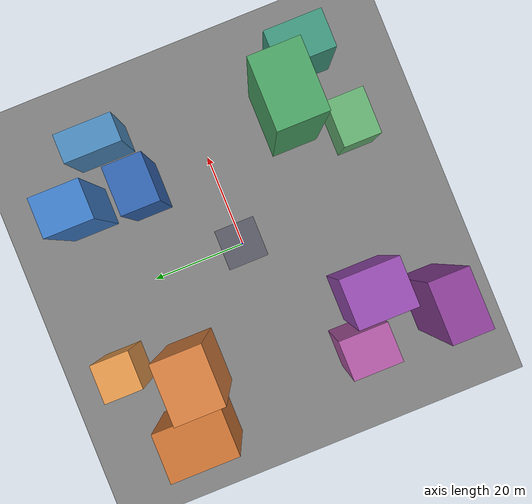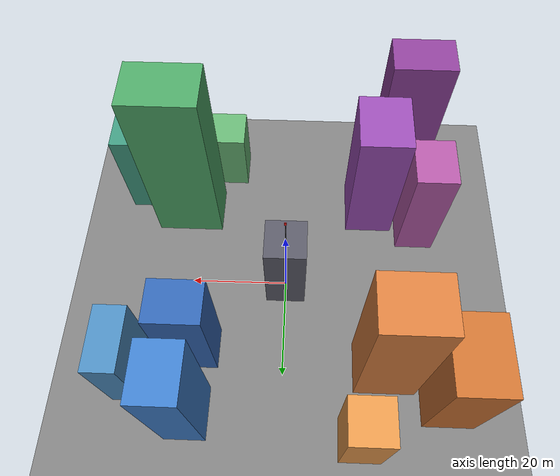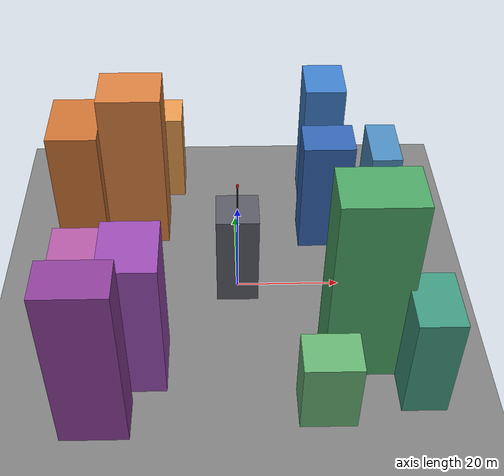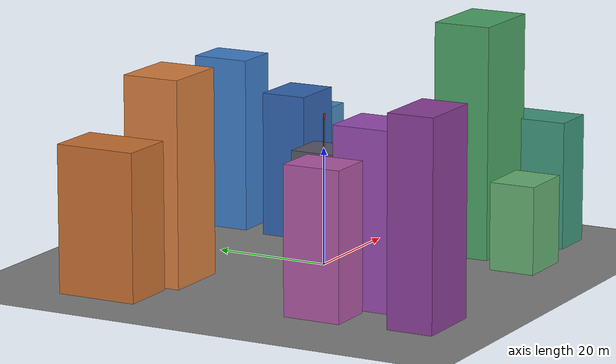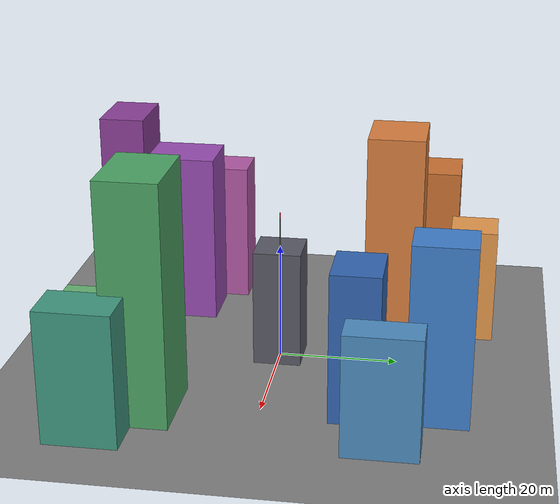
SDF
<?xml version="1.0" ?>
<!-- Scenario 2: Dense Urban Environment
     Many tall buildings creating heavy NLOS conditions
     Expected: Ray tracing and hybrid models should outperform simple FSPL -->
<sdf version="1.8">
  <world name="scenario_dense_urban">

    <physics name="1ms" type="ignored">
      <max_step_size>0.001</max_step_size>
      <real_time_factor>1.0</real_time_factor>
    </physics>

    <plugin filename="ignition-gazebo-physics-system"
            name="ignition::gazebo::systems::Physics"/>
    <plugin filename="ignition-gazebo-scene-broadcaster-system"
            name="ignition::gazebo::systems::SceneBroadcaster"/>
    <plugin filename="ignition-gazebo-user-commands-system"
            name="ignition::gazebo::systems::UserCommands"/>

    <plugin filename="libHeatmapPlugin.so"
            name="heatmap_plugin::HeatmapPlugin">
      <grid_w>128</grid_w>
      <grid_h>128</grid_h>
      <cell_size>0.5</cell_size>
      <frequency_hz>3500000000</frequency_hz>
      <tx_dbm>30.0</tx_dbm>
      <tx_height>25.0</tx_height>
      <rx_height>1.5</rx_height>
      <tx_gain_dbi>8.0</tx_gain_dbi>
      <rx_gain_dbi>0.0</rx_gain_dbi>
      <gnb_pose>0 0 25 0 0 0</gnb_pose>
      <propagation_model>3gpp_umi</propagation_model>
      <wall_loss_db>20.0</wall_loss_db>
      <reflection_coeff>0.6</reflection_coeff>
      <include_shadowing>false</include_shadowing>
      <max_reflections>2</max_reflections>
    </plugin>

    <light type="directional" name="sun">
      <cast_shadows>true</cast_shadows>
      <pose>0 0 50 0 0 0</pose>
      <diffuse>0.8 0.8 0.8 1</diffuse>
      <specular>0.2 0.2 0.2 1</specular>
      <direction>-0.5 0.1 -0.9</direction>
    </light>

    <!-- Ground plane - Grey -->
    <model name="ground_plane">
      <static>true</static>
      <link name="link">
        <collision name="collision">
          <geometry><plane><normal>0 0 1</normal><size>200 200</size></plane></geometry>
        </collision>
        <visual name="visual">
          <geometry><plane><normal>0 0 1</normal><size>200 200</size></plane></geometry>
          <material>
            <ambient>0.5 0.5 0.5 1</ambient>
            <diffuse>0.5 0.5 0.5 1</diffuse>
            <specular>0.1 0.1 0.1 1</specular>
            <emissive>0 0 0 1</emissive>
          </material>
        </visual>
      </link>
    </model>

    <!-- gNB on rooftop - Dark grey -->
    <model name="gnb_building">
      <static>true</static>
      <pose>0 0 10 0 0 0</pose>
      <link name="link">
        <collision name="collision">
          <geometry><box><size>8 8 20</size></box></geometry>
        </collision>
        <visual name="visual">
          <geometry><box><size>8 8 20</size></box></geometry>
          <material>
            <ambient>0.35 0.35 0.4 1</ambient>
            <diffuse>0.35 0.35 0.4 1</diffuse>
            <specular>0.1 0.1 0.1 1</specular>
            <emissive>0 0 0 1</emissive>
          </material>
        </visual>
      </link>
    </model>

    <model name="gnb_antenna">
      <static>true</static>
      <pose>0 0 21 0 0 0</pose>
      <link name="link">
        <visual name="pole">
          <geometry><cylinder><radius>0.1</radius><length>8</length></cylinder></geometry>
          <material>
            <ambient>0.3 0.3 0.3 1</ambient>
            <diffuse>0.3 0.3 0.3 1</diffuse>
            <specular>0.1 0.1 0.1 1</specular>
            <emissive>0 0 0 1</emissive>
          </material>
        </visual>
        <visual name="antenna">
          <pose>0 0 4.5 0 0 0</pose>
          <geometry><box><size>0.4 0.15 0.8</size></box></geometry>
          <material>
            <ambient>0.9 0.1 0.1 1</ambient>
            <diffuse>0.9 0.1 0.1 1</diffuse>
            <specular>0.2 0.2 0.2 1</specular>
            <emissive>0 0 0 1</emissive>
          </material>
        </visual>
      </link>
    </model>

    <!-- Block 1 (NE) - Blues -->
    <model name="bldg_ne_1">
      <static>true</static>
      <pose>18 15 12.5 0 0 0</pose>
      <link name="link">
        <collision name="collision"><geometry><box><size>10 8 25</size></box></geometry></collision>
        <visual name="visual">
          <geometry><box><size>10 8 25</size></box></geometry>
          <material>
            <ambient>0.2 0.4 0.7 1</ambient>
            <diffuse>0.2 0.4 0.7 1</diffuse>
            <specular>0.1 0.1 0.1 1</specular>
            <emissive>0 0 0 1</emissive>
          </material>
        </visual>
      </link>
    </model>

    <model name="bldg_ne_2">
      <static>true</static>
      <pose>18 28 15 0 0 0</pose>
      <link name="link">
        <collision name="collision"><geometry><box><size>8 10 30</size></box></geometry></collision>
        <visual name="visual">
          <geometry><box><size>8 10 30</size></box></geometry>
          <material>
            <ambient>0.25 0.5 0.8 1</ambient>
            <diffuse>0.25 0.5 0.8 1</diffuse>
            <specular>0.1 0.1 0.1 1</specular>
            <emissive>0 0 0 1</emissive>
          </material>
        </visual>
      </link>
    </model>

    <model name="bldg_ne_3">
      <static>true</static>
      <pose>30 20 10 0 0 0</pose>
      <link name="link">
        <collision name="collision"><geometry><box><size>6 12 20</size></box></geometry></collision>
        <visual name="visual">
          <geometry><box><size>6 12 20</size></box></geometry>
          <material>
            <ambient>0.3 0.55 0.75 1</ambient>
            <diffuse>0.3 0.55 0.75 1</diffuse>
            <specular>0.1 0.1 0.1 1</specular>
            <emissive>0 0 0 1</emissive>
          </material>
        </visual>
      </link>
    </model>

    <!-- Block 2 (NW) - Oranges/Terracotta -->
    <model name="bldg_nw_1">
      <static>true</static>
      <pose>-20 18 17.5 0 0 0</pose>
      <link name="link">
        <collision name="collision"><geometry><box><size>12 10 35</size></box></geometry></collision>
        <visual name="visual">
          <geometry><box><size>12 10 35</size></box></geometry>
          <material>
            <ambient>0.85 0.5 0.25 1</ambient>
            <diffuse>0.85 0.5 0.25 1</diffuse>
            <specular>0.1 0.1 0.1 1</specular>
            <emissive>0 0 0 1</emissive>
          </material>
        </visual>
      </link>
    </model>

    <model name="bldg_nw_2">
      <static>true</static>
      <pose>-15 32 10 0 0 0</pose>
      <link name="link">
        <collision name="collision"><geometry><box><size>8 8 20</size></box></geometry></collision>
        <visual name="visual">
          <geometry><box><size>8 8 20</size></box></geometry>
          <material>
            <ambient>0.9 0.6 0.3 1</ambient>
            <diffuse>0.9 0.6 0.3 1</diffuse>
            <specular>0.1 0.1 0.1 1</specular>
            <emissive>0 0 0 1</emissive>
          </material>
        </visual>
      </link>
    </model>

    <model name="bldg_nw_3">
      <static>true</static>
      <pose>-32 22 12.5 0 0 0</pose>
      <link name="link">
        <collision name="collision"><geometry><box><size>10 14 25</size></box></geometry></collision>
        <visual name="visual">
          <geometry><box><size>10 14 25</size></box></geometry>
          <material>
            <ambient>0.8 0.45 0.2 1</ambient>
            <diffuse>0.8 0.45 0.2 1</diffuse>
            <specular>0.1 0.1 0.1 1</specular>
            <emissive>0 0 0 1</emissive>
          </material>
        </visual>
      </link>
    </model>

    <!-- Block 3 (SE) - Greens -->
    <model name="bldg_se_1">
      <static>true</static>
      <pose>22 -18 20 0 0 0</pose>
      <link name="link">
        <collision name="collision"><geometry><box><size>14 10 40</size></box></geometry></collision>
        <visual name="visual">
          <geometry><box><size>14 10 40</size></box></geometry>
          <material>
            <ambient>0.3 0.65 0.4 1</ambient>
            <diffuse>0.3 0.65 0.4 1</diffuse>
            <specular>0.1 0.1 0.1 1</specular>
            <emissive>0 0 0 1</emissive>
          </material>
        </visual>
      </link>
    </model>

    <model name="bldg_se_2">
      <static>true</static>
      <pose>15 -30 7.5 0 0 0</pose>
      <link name="link">
        <collision name="collision"><geometry><box><size>10 8 15</size></box></geometry></collision>
        <visual name="visual">
          <geometry><box><size>10 8 15</size></box></geometry>
          <material>
            <ambient>0.4 0.7 0.45 1</ambient>
            <diffuse>0.4 0.7 0.45 1</diffuse>
            <specular>0.1 0.1 0.1 1</specular>
            <emissive>0 0 0 1</emissive>
          </material>
        </visual>
      </link>
    </model>

    <model name="bldg_se_3">
      <static>true</static>
      <pose>32 -25 11 0 0 0</pose>
      <link name="link">
        <collision name="collision"><geometry><box><size>8 12 22</size></box></geometry></collision>
        <visual name="visual">
          <geometry><box><size>8 12 22</size></box></geometry>
          <material>
            <ambient>0.25 0.6 0.5 1</ambient>
            <diffuse>0.25 0.6 0.5 1</diffuse>
            <specular>0.1 0.1 0.1 1</specular>
            <emissive>0 0 0 1</emissive>
          </material>
        </visual>
      </link>
    </model>

    <!-- Block 4 (SW) - Purples/Magentas -->
    <model name="bldg_sw_1">
      <static>true</static>
      <pose>-18 -20 15 0 0 0</pose>
      <link name="link">
        <collision name="collision"><geometry><box><size>10 12 30</size></box></geometry></collision>
        <visual name="visual">
          <geometry><box><size>10 12 30</size></box></geometry>
          <material>
            <ambient>0.6 0.3 0.7 1</ambient>
            <diffuse>0.6 0.3 0.7 1</diffuse>
            <specular>0.1 0.1 0.1 1</specular>
            <emissive>0 0 0 1</emissive>
          </material>
        </visual>
      </link>
    </model>

    <model name="bldg_sw_2">
      <static>true</static>
      <pose>-28 -15 12.5 0 0 0</pose>
      <link name="link">
        <collision name="collision"><geometry><box><size>8 10 25</size></box></geometry></collision>
        <visual name="visual">
          <geometry><box><size>8 10 25</size></box></geometry>
          <material>
            <ambient>0.7 0.35 0.65 1</ambient>
            <diffuse>0.7 0.35 0.65 1</diffuse>
            <specular>0.1 0.1 0.1 1</specular>
            <emissive>0 0 0 1</emissive>
          </material>
        </visual>
      </link>
    </model>

    <model name="bldg_sw_3">
      <static>true</static>
      <pose>-25 -32 17.5 0 0 0</pose>
      <link name="link">
        <collision name="collision"><geometry><box><size>12 8 35</size></box></geometry></collision>
        <visual name="visual">
          <geometry><box><size>12 8 35</size></box></geometry>
          <material>
            <ambient>0.55 0.25 0.6 1</ambient>
            <diffuse>0.55 0.25 0.6 1</diffuse>
            <specular>0.1 0.1 0.1 1</specular>
            <emissive>0 0 0 1</emissive>
          </material>
        </visual>
      </link>
    </model>

  </world>
</sdf>
